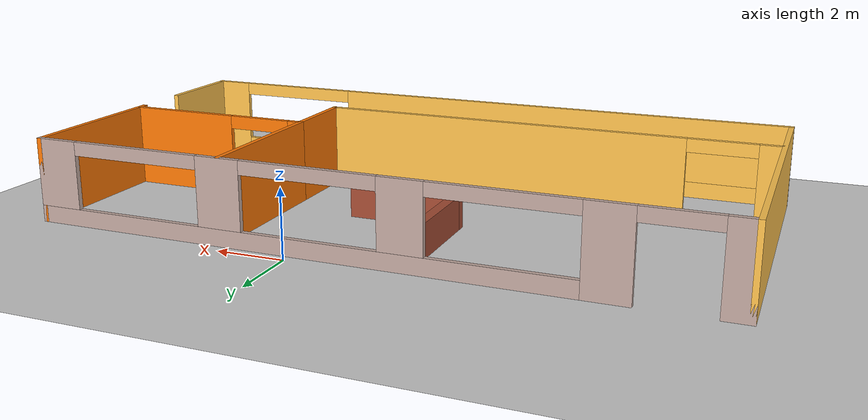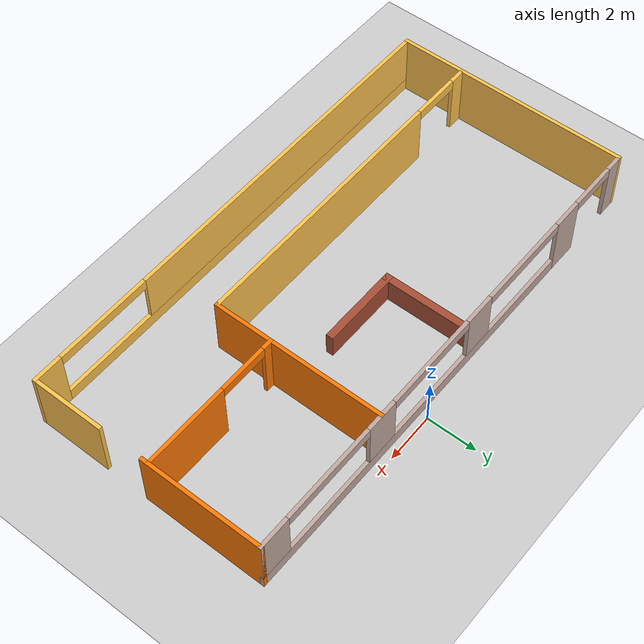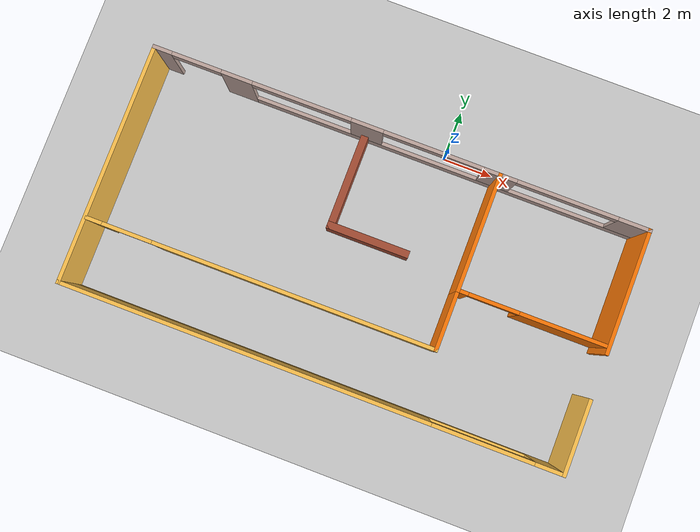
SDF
<sdf version="1.7">
 <world name="default">
  <model name="ground_plane">
   <static>1</static>
   <link name="link">
    <collision name="collision">
     <geometry><plane><normal>0 0 1</normal><size>100 100</size></plane></geometry>
     <surface>
      <contact><collide_bitmask>65535</collide_bitmask></contact>
      <friction><ode><mu>100</mu><mu2>50</mu2></ode></friction>
     </surface>
    </collision>
    <visual name="visual">
     <cast_shadows>0</cast_shadows>
     <geometry><plane><normal>0 0 1</normal><size>100 100</size></plane></geometry>
     <material>
      <script><uri>file://media/materials/scripts/gazebo.material</uri><name>Gazebo/Grey</name></script>
     </material>
    </visual>
   </link>
  </model>
  <model name="building_proj">
   <pose>-1.89195 -5.00108 0 0 -0 0</pose>
   <link name="Wall_20">
    <pose>-0 4.62544 0 0 -0 0</pose>
    <visual name="Wall_20_Visual_0">
     <pose>-9.60321 0 1.25 0 -0 0</pose>
     <geometry><box><size>0.793589 0.15 2.5</size></box></geometry>
     <material>
      <script><uri>file://media/materials/scripts/gazebo.material</uri><name>Gazebo/Grey</name></script>
      <ambient>0.760784 0.662745 0.627451 1</ambient>
     </material>
     <meta><layer>0</layer></meta>
    </visual>
    <collision name="Wall_20_Collision_0">
     <geometry><box><size>0.793589 0.15 2.5</size></box></geometry>
     <pose>-9.60321 0 1.25 0 -0 0</pose>
    </collision>
    <visual name="Wall_20_Visual_1">
     <pose>-6.57719 0 1.25 0 -0 0</pose>
     <geometry><box><size>1.25845 0.15 2.5</size></box></geometry>
     <material>
      <script><uri>file://media/materials/scripts/gazebo.material</uri><name>Gazebo/Grey</name></script>
      <ambient>0.760784 0.662745 0.627451 1</ambient>
     </material>
     <meta><layer>0</layer></meta>
    </visual>
    <collision name="Wall_20_Collision_1">
     <geometry><box><size>1.25845 0.15 2.5</size></box></geometry>
     <pose>-6.57719 0 1.25 0 -0 0</pose>
    </collision>
    <visual name="Wall_20_Visual_2">
     <pose>2.02602 0 0.25 0 -0 0</pose>
     <geometry><box><size>15.948 0.15 0.5</size></box></geometry>
     <material>
      <script><uri>file://media/materials/scripts/gazebo.material</uri><name>Gazebo/Grey</name></script>
      <ambient>0.760784 0.662745 0.627451 1</ambient>
     </material>
     <meta><layer>0</layer></meta>
    </visual>
    <collision name="Wall_20_Collision_2">
     <geometry><box><size>15.948 0.15 0.5</size></box></geometry>
     <pose>2.02602 0 0.25 0 -0 0</pose>
    </collision>
    <visual name="Wall_20_Visual_3">
     <pose>-1.30164 0 1.5 0 -0 0</pose>
     <geometry><box><size>1.29265 0.15 2</size></box></geometry>
     <material>
      <script><uri>file://media/materials/scripts/gazebo.material</uri><name>Gazebo/Grey</name></script>
      <ambient>0.760784 0.662745 0.627451 1</ambient>
     </material>
     <meta><layer>0</layer></meta>
    </visual>
    <collision name="Wall_20_Collision_3">
     <geometry><box><size>1.29265 0.15 2</size></box></geometry>
     <pose>-1.30164 0 1.5 0 -0 0</pose>
    </collision>
    <visual name="Wall_20_Visual_4">
     <pose>4.01382 0 1.5 0 -0 0</pose>
     <geometry><box><size>1.33827 0.15 2</size></box></geometry>
     <material>
      <script><uri>file://media/materials/scripts/gazebo.material</uri><name>Gazebo/Grey</name></script>
      <ambient>0.760784 0.662745 0.627451 1</ambient>
     </material>
     <meta><layer>0</layer></meta>
    </visual>
    <collision name="Wall_20_Collision_4">
     <geometry><box><size>1.33827 0.15 2</size></box></geometry>
     <pose>4.01382 0 1.5 0 -0 0</pose>
    </collision>
    <visual name="Wall_20_Visual_5">
     <pose>9.34148 0 1.5 0 -0 0</pose>
     <geometry><box><size>1.31705 0.15 2</size></box></geometry>
     <material>
      <script><uri>file://media/materials/scripts/gazebo.material</uri><name>Gazebo/Grey</name></script>
      <ambient>0.760784 0.662745 0.627451 1</ambient>
     </material>
     <meta><layer>0</layer></meta>
    </visual>
    <collision name="Wall_20_Collision_5">
     <geometry><box><size>1.31705 0.15 2</size></box></geometry>
     <pose>9.34148 0 1.5 0 -0 0</pose>
    </collision>
    <visual name="Wall_20_Visual_6">
     <pose>-8.20641 0 2.3 0 -0 0</pose>
     <geometry><box><size>2 0.15 0.4</size></box></geometry>
     <material>
      <script><uri>file://media/materials/scripts/gazebo.material</uri><name>Gazebo/Grey</name></script>
      <ambient>0.760784 0.662745 0.627451 1</ambient>
     </material>
     <meta><layer>0</layer></meta>
    </visual>
    <collision name="Wall_20_Collision_6">
     <geometry><box><size>2 0.15 0.4</size></box></geometry>
     <pose>-8.20641 0 2.3 0 -0 0</pose>
    </collision>
    <visual name="Wall_20_Visual_7">
     <pose>-3.94796 0 2.3 0 -0 0</pose>
     <geometry><box><size>4 0.15 0.4</size></box></geometry>
     <material>
      <script><uri>file://media/materials/scripts/gazebo.material</uri><name>Gazebo/Grey</name></script>
      <ambient>0.760784 0.662745 0.627451 1</ambient>
     </material>
     <meta><layer>0</layer></meta>
    </visual>
    <collision name="Wall_20_Collision_7">
     <geometry><box><size>4 0.15 0.4</size></box></geometry>
     <pose>-3.94796 0 2.3 0 -0 0</pose>
    </collision>
    <visual name="Wall_20_Visual_8">
     <pose>1.34468 0 2.3 0 -0 0</pose>
     <geometry><box><size>4 0.15 0.4</size></box></geometry>
     <material>
      <script><uri>file://media/materials/scripts/gazebo.material</uri><name>Gazebo/Grey</name></script>
      <ambient>0.760784 0.662745 0.627451 1</ambient>
     </material>
     <meta><layer>0</layer></meta>
    </visual>
    <collision name="Wall_20_Collision_8">
     <geometry><box><size>4 0.15 0.4</size></box></geometry>
     <pose>1.34468 0 2.3 0 -0 0</pose>
    </collision>
    <visual name="Wall_20_Visual_9">
     <pose>6.68295 0 2.3 0 -0 0</pose>
     <geometry><box><size>4 0.15 0.4</size></box></geometry>
     <material>
      <script><uri>file://media/materials/scripts/gazebo.material</uri><name>Gazebo/Grey</name></script>
      <ambient>0.760784 0.662745 0.627451 1</ambient>
     </material>
     <meta><layer>0</layer></meta>
    </visual>
    <collision name="Wall_20_Collision_9">
     <geometry><box><size>4 0.15 0.4</size></box></geometry>
     <pose>6.68295 0 2.3 0 -0 0</pose>
    </collision>
   </link>
   <link name="Wall_21">
    <collision name="Wall_21_Collision">
     <geometry><box><size>5 0.15 2.5</size></box></geometry>
     <pose>0 0 1.25 0 -0 0</pose>
    </collision>
    <visual name="Wall_21_Visual">
     <pose>0 0 1.25 0 -0 0</pose>
     <geometry><box><size>5 0.15 2.5</size></box></geometry>
     <material>
      <script><uri>file://media/materials/scripts/gazebo.material</uri><name>Gazebo/Grey</name></script>
      <ambient>0.996078 0.47451 0.0196078 1</ambient>
     </material>
     <meta><layer>0</layer></meta>
    </visual>
    <pose>9.925 2.20044 0 0 -0 -1.5708</pose>
   </link>
   <link name="Wall_23">
    <collision name="Wall_23_Collision">
     <geometry><box><size>3 0.15 2.5</size></box></geometry>
     <pose>0 0 1.25 0 -0 0</pose>
    </collision>
    <visual name="Wall_23_Visual">
     <pose>0 0 1.25 0 -0 0</pose>
     <geometry><box><size>3 0.15 2.5</size></box></geometry>
     <material>
      <script><uri>file://media/materials/scripts/gazebo.material</uri><name>Gazebo/Grey</name></script>
      <ambient>1 0.764706 0.305882 1</ambient>
     </material>
     <meta><layer>0</layer></meta>
    </visual>
    <pose>9.925 -3.49956 0 0 -0 -1.5708</pose>
   </link>
   <link name="Wall_24">
    <pose>-0 -4.92456 0 0 -0 3.14159</pose>
    <visual name="Wall_24_Visual_0">
     <pose>-9.39305 0 1.25 0 -0 0</pose>
     <geometry><box><size>1.21389 0.15 2.5</size></box></geometry>
     <material>
      <script><uri>file://media/materials/scripts/gazebo.material</uri><name>Gazebo/Grey</name></script>
      <ambient>1 0.764706 0.305882 1</ambient>
     </material>
     <meta><layer>0</layer></meta>
    </visual>
    <collision name="Wall_24_Collision_0">
     <geometry><box><size>1.21389 0.15 2.5</size></box></geometry>
     <pose>-9.39305 0 1.25 0 -0 0</pose>
    </collision>
    <visual name="Wall_24_Visual_1">
     <pose>0.606947 0 0.25 0 -0 0</pose>
     <geometry><box><size>18.7861 0.15 0.5</size></box></geometry>
     <material>
      <script><uri>file://media/materials/scripts/gazebo.material</uri><name>Gazebo/Grey</name></script>
      <ambient>1 0.764706 0.305882 1</ambient>
     </material>
     <meta><layer>0</layer></meta>
    </visual>
    <collision name="Wall_24_Collision_1">
     <geometry><box><size>18.7861 0.15 0.5</size></box></geometry>
     <pose>0.606947 0 0.25 0 -0 0</pose>
    </collision>
    <visual name="Wall_24_Visual_2">
     <pose>2.60695 0 1.5 0 -0 0</pose>
     <geometry><box><size>14.7861 0.15 2</size></box></geometry>
     <material>
      <script><uri>file://media/materials/scripts/gazebo.material</uri><name>Gazebo/Grey</name></script>
      <ambient>1 0.764706 0.305882 1</ambient>
     </material>
     <meta><layer>0</layer></meta>
    </visual>
    <collision name="Wall_24_Collision_2">
     <geometry><box><size>14.7861 0.15 2</size></box></geometry>
     <pose>2.60695 0 1.5 0 -0 0</pose>
    </collision>
    <visual name="Wall_24_Visual_3">
     <pose>-6.78611 0 2.3 0 -0 0</pose>
     <geometry><box><size>4 0.15 0.4</size></box></geometry>
     <material>
      <script><uri>file://media/materials/scripts/gazebo.material</uri><name>Gazebo/Grey</name></script>
      <ambient>1 0.764706 0.305882 1</ambient>
     </material>
     <meta><layer>0</layer></meta>
    </visual>
    <collision name="Wall_24_Collision_3">
     <geometry><box><size>4 0.15 0.4</size></box></geometry>
     <pose>-6.78611 0 2.3 0 -0 0</pose>
    </collision>
   </link>
   <link name="Wall_25">
    <collision name="Wall_25_Collision">
     <geometry><box><size>9.7 0.15 2.5</size></box></geometry>
     <pose>0 0 1.25 0 -0 0</pose>
    </collision>
    <visual name="Wall_25_Visual">
     <pose>0 0 1.25 0 -0 0</pose>
     <geometry><box><size>9.7 0.15 2.5</size></box></geometry>
     <material>
      <script><uri>file://media/materials/scripts/gazebo.material</uri><name>Gazebo/Grey</name></script>
      <ambient>1 0.764706 0.305882 1</ambient>
     </material>
     <meta><layer>0</layer></meta>
    </visual>
    <pose>-9.925 -0.149558 0 0 -0 1.5708</pose>
   </link>
   <link name="Wall_49">
    <collision name="Wall_49_Collision">
     <geometry><box><size>4.75 0.15 2.5</size></box></geometry>
     <pose>0 0 1.25 0 -0 0</pose>
    </collision>
    <visual name="Wall_49_Visual">
     <pose>0 0 1.25 0 -0 0</pose>
     <geometry><box><size>4.75 0.15 2.5</size></box></geometry>
     <material>
      <script><uri>file://media/materials/scripts/gazebo.material</uri><name>Gazebo/Grey</name></script>
      <ambient>0.996078 0.47451 0.0196078 1</ambient>
     </material>
     <meta><layer>0</layer></meta>
    </visual>
    <pose>4.01102 2.32197 0 0 -0 -1.5708</pose>
   </link>
   <link name="Wall_50">
    <pose>6.93602 0.021971 0 0 -0 0</pose>
    <visual name="Wall_50_Visual_0">
     <pose>-2.75702 0 1.25 0 -0 0</pose>
     <geometry><box><size>0.485967 0.15 2.5</size></box></geometry>
     <material>
      <script><uri>file://media/materials/scripts/gazebo.material</uri><name>Gazebo/Grey</name></script>
      <ambient>0.996078 0.47451 0.0196078 1</ambient>
     </material>
     <meta><layer>0</layer></meta>
    </visual>
    <collision name="Wall_50_Collision_0">
     <geometry><box><size>0.485967 0.15 2.5</size></box></geometry>
     <pose>-2.75702 0 1.25 0 -0 0</pose>
    </collision>
    <visual name="Wall_50_Visual_1">
     <pose>1.24298 0 1.25 0 -0 0</pose>
     <geometry><box><size>3.51403 0.15 2.5</size></box></geometry>
     <material>
      <script><uri>file://media/materials/scripts/gazebo.material</uri><name>Gazebo/Grey</name></script>
      <ambient>0.996078 0.47451 0.0196078 1</ambient>
     </material>
     <meta><layer>0</layer></meta>
    </visual>
    <collision name="Wall_50_Collision_1">
     <geometry><box><size>3.51403 0.15 2.5</size></box></geometry>
     <pose>1.24298 0 1.25 0 -0 0</pose>
    </collision>
    <visual name="Wall_50_Visual_2">
     <pose>-1.51403 0 2.3 0 -0 0</pose>
     <geometry><box><size>2 0.15 0.4</size></box></geometry>
     <material>
      <script><uri>file://media/materials/scripts/gazebo.material</uri><name>Gazebo/Grey</name></script>
      <ambient>0.996078 0.47451 0.0196078 1</ambient>
     </material>
     <meta><layer>0</layer></meta>
    </visual>
    <collision name="Wall_50_Collision_2">
     <geometry><box><size>2 0.15 0.4</size></box></geometry>
     <pose>-1.51403 0 2.3 0 -0 0</pose>
    </collision>
   </link>
   <link name="Wall_52">
    <collision name="Wall_52_Collision">
     <geometry><box><size>2.5 0.15 2.5</size></box></geometry>
     <pose>0 0 1.25 0 -0 0</pose>
    </collision>
    <visual name="Wall_52_Visual">
     <pose>0 0 1.25 0 -0 0</pose>
     <geometry><box><size>2.5 0.15 2.5</size></box></geometry>
     <material>
      <script><uri>file://media/materials/scripts/gazebo.material</uri><name>Gazebo/Grey</name></script>
      <ambient>0.996078 0.47451 0.0196078 1</ambient>
     </material>
     <meta><layer>0</layer></meta>
    </visual>
    <pose>4.01102 -1.15303 0 0 -0 -1.5708</pose>
   </link>
   <link name="Wall_53">
    <pose>-2.91398 -2.32803 0 0 -0 3.14159</pose>
    <visual name="Wall_53_Visual_0">
     <pose>-1.33289 0 1.25 0 -0 0</pose>
     <geometry><box><size>11.3342 0.15 2.5</size></box></geometry>
     <material>
      <script><uri>file://media/materials/scripts/gazebo.material</uri><name>Gazebo/Grey</name></script>
      <ambient>1 0.764706 0.305882 1</ambient>
     </material>
     <meta><layer>0</layer></meta>
    </visual>
    <collision name="Wall_53_Collision_0">
     <geometry><box><size>11.3342 0.15 2.5</size></box></geometry>
     <pose>-1.33289 0 1.25 0 -0 0</pose>
    </collision>
    <visual name="Wall_53_Visual_1">
     <pose>6.66711 0 1.25 0 -0 0</pose>
     <geometry><box><size>0.665778 0.15 2.5</size></box></geometry>
     <material>
      <script><uri>file://media/materials/scripts/gazebo.material</uri><name>Gazebo/Grey</name></script>
      <ambient>1 0.764706 0.305882 1</ambient>
     </material>
     <meta><layer>0</layer></meta>
    </visual>
    <collision name="Wall_53_Collision_1">
     <geometry><box><size>0.665778 0.15 2.5</size></box></geometry>
     <pose>6.66711 0 1.25 0 -0 0</pose>
    </collision>
    <visual name="Wall_53_Visual_2">
     <pose>5.33422 0 2.3 0 -0 0</pose>
     <geometry><box><size>2 0.15 0.4</size></box></geometry>
     <material>
      <script><uri>file://media/materials/scripts/gazebo.material</uri><name>Gazebo/Grey</name></script>
      <ambient>1 0.764706 0.305882 1</ambient>
     </material>
     <meta><layer>0</layer></meta>
    </visual>
    <collision name="Wall_53_Collision_2">
     <geometry><box><size>2 0.15 0.4</size></box></geometry>
     <pose>5.33422 0 2.3 0 -0 0</pose>
    </collision>
   </link>
   <link name="Wall_55">
    <collision name="Wall_55_Collision">
     <geometry><box><size>4 0.3 1</size></box></geometry>
     <pose>0 0 0.5 0 -0 0</pose>
    </collision>
    <visual name="Wall_55_Visual">
     <pose>0 0 0.5 0 -0 0</pose>
     <geometry><box><size>4 0.3 1</size></box></geometry>
     <material>
      <script><uri>file://media/materials/scripts/gazebo.material</uri><name>Gazebo/Bricks</name></script>
      <ambient>1 1 1 1</ambient>
     </material>
     <meta><layer>0</layer></meta>
    </visual>
    <pose>-1.35578 2.62156 0 0 -0 -1.5708</pose>
   </link>
   <link name="Wall_56">
    <collision name="Wall_56_Collision">
     <geometry><box><size>3.40049 0.3 1</size></box></geometry>
     <pose>0 0 0.5 0 -0 0</pose>
    </collision>
    <visual name="Wall_56_Visual">
     <pose>0 0 0.5 0 -0 0</pose>
     <geometry><box><size>3.40049 0.3 1</size></box></geometry>
     <material>
      <script><uri>file://media/materials/scripts/gazebo.material</uri><name>Gazebo/Bricks</name></script>
      <ambient>1 1 1 1</ambient>
     </material>
     <meta><layer>0</layer></meta>
    </visual>
    <pose>0.194224 0.771557 0 0 -0 0</pose>
   </link>
   <static>1</static>
  </model>
 </world>
</sdf>
